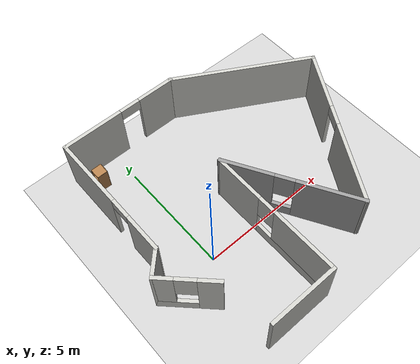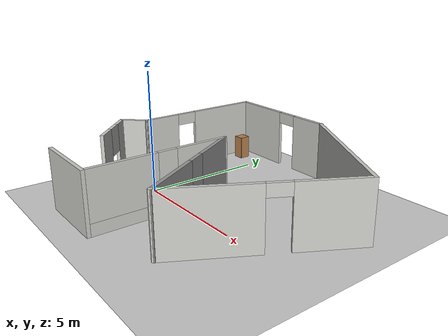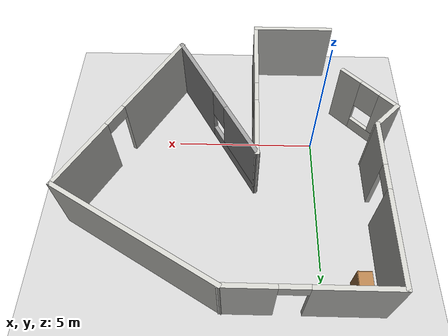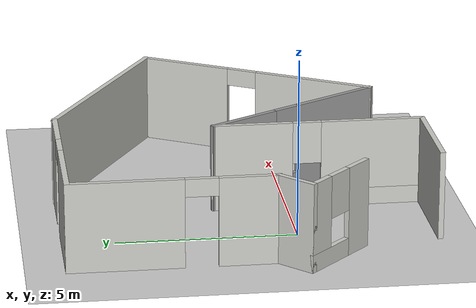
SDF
<sdf version="1.7">
 <world name="default">
  <light name="sun" type="directional">
   <pose>0 0 10 0 -0 0</pose>
   <diffuse>0.8 0.8 0.8 1</diffuse>
   <specular>0.2 0.2 0.2 1</specular>
   <attenuation>
    <range>1000</range>
    <constant>0.9</constant>
    <linear>0.01</linear>
    <quadratic>0.001</quadratic>
   </attenuation>
   <direction>-0.5 0.1 -0.9</direction>
   <spot><inner_angle>0</inner_angle><outer_angle>0</outer_angle><falloff>0</falloff></spot>
  </light>
  <model name="ground_plane">
   <static>1</static>
   <link name="link">
    <collision name="collision">
     <geometry><plane><normal>0 0 1</normal><size>100 100</size></plane></geometry>
     <surface>
      <contact><collide_bitmask>65535</collide_bitmask></contact>
      <friction><ode><mu>100</mu><mu2>50</mu2></ode></friction>
     </surface>
    </collision>
    <visual name="visual">
     <cast_shadows>0</cast_shadows>
     <geometry><plane><normal>0 0 1</normal><size>100 100</size></plane></geometry>
     <material>
      <script><uri>file://media/materials/scripts/gazebo.material</uri><name>Gazebo/Grey</name></script>
     </material>
    </visual>
   </link>
  </model>
  <gravity>0 0 -9.8</gravity>
  <magnetic_field>6e-06 2.3e-05 -4.2e-05</magnetic_field>
  <atmosphere type="adiabatic"/>
  <physics type="ode">
   <max_step_size>0.001</max_step_size>
   <real_time_factor>1</real_time_factor>
   <real_time_update_rate>1000</real_time_update_rate>
  </physics>
  <scene><ambient>0.4 0.4 0.4 1</ambient><background>0.7 0.7 0.7 1</background><shadows>1</shadows></scene>
  <audio><device>default</device></audio>
  <spherical_coordinates>
   <surface_model>EARTH_WGS84</surface_model>
   <latitude_deg>0</latitude_deg>
   <longitude_deg>0</longitude_deg>
   <elevation>0</elevation>
   <heading_deg>0</heading_deg>
  </spherical_coordinates>
  <model name="ors_building">
   <pose>2.92678 1.29373 0 0 -0 0</pose>
   <link name="Wall_0">
    <pose>-4.74763 -2.12288 0 0 -0 2.35619</pose>
    <visual name="Wall_0_Visual_0">
     <pose>-0.799423 0 1.25 0 -0 0</pose>
     <geometry><box><size>0.901154 0.15 2.5</size></box></geometry>
     <material>
      <script><uri>file://media/materials/scripts/gazebo.material</uri><name>Gazebo/CeilingTiled</name></script>
      <ambient>1 1 1 1</ambient>
     </material>
     <meta><layer>0</layer></meta>
    </visual>
    <collision name="Wall_0_Collision_0">
     <geometry><box><size>0.901154 0.15 2.5</size></box></geometry>
     <pose>-0.799423 0 1.25 0 -0 0</pose>
    </collision>
    <visual name="Wall_0_Visual_1">
     <pose>0.450577 0 0.25 0 -0 0</pose>
     <geometry><box><size>1.59885 0.15 0.5</size></box></geometry>
     <material>
      <script><uri>file://media/materials/scripts/gazebo.material</uri><name>Gazebo/CeilingTiled</name></script>
      <ambient>1 1 1 1</ambient>
     </material>
     <meta><layer>0</layer></meta>
    </visual>
    <collision name="Wall_0_Collision_1">
     <geometry><box><size>1.59885 0.15 0.5</size></box></geometry>
     <pose>0.450577 0 0.25 0 -0 0</pose>
    </collision>
    <visual name="Wall_0_Visual_2">
     <pose>0.850577 0 1.5 0 -0 0</pose>
     <geometry><box><size>0.798846 0.15 2</size></box></geometry>
     <material>
      <script><uri>file://media/materials/scripts/gazebo.material</uri><name>Gazebo/CeilingTiled</name></script>
      <ambient>1 1 1 1</ambient>
     </material>
     <meta><layer>0</layer></meta>
    </visual>
    <collision name="Wall_0_Collision_2">
     <geometry><box><size>0.798846 0.15 2</size></box></geometry>
     <pose>0.850577 0 1.5 0 -0 0</pose>
    </collision>
    <visual name="Wall_0_Visual_3">
     <pose>0.051154 0 1.9 0 -0 0</pose>
     <geometry><box><size>0.8 0.15 1.2</size></box></geometry>
     <material>
      <script><uri>file://media/materials/scripts/gazebo.material</uri><name>Gazebo/CeilingTiled</name></script>
      <ambient>1 1 1 1</ambient>
     </material>
     <meta><layer>0</layer></meta>
    </visual>
    <collision name="Wall_0_Collision_3">
     <geometry><box><size>0.8 0.15 1.2</size></box></geometry>
     <pose>0.051154 0 1.9 0 -0 0</pose>
    </collision>
   </link>
   <link name="Wall_1">
    <collision name="Wall_1_Collision">
     <geometry><box><size>1.25 0.15 2.5</size></box></geometry>
     <pose>0 0 1.25 0 -0 0</pose>
    </collision>
    <visual name="Wall_1_Visual">
     <pose>0 0 1.25 0 -0 0</pose>
     <geometry><box><size>1.25 0.15 2.5</size></box></geometry>
     <material>
      <script><uri>file://media/materials/scripts/gazebo.material</uri><name>Gazebo/CeilingTiled</name></script>
      <ambient>1 1 1 1</ambient>
     </material>
     <meta><layer>0</layer></meta>
    </visual>
    <pose>-5.18957 -0.903116 0 0 -0 0.785398</pose>
   </link>
   <link name="Wall_2">
    <pose>-4.80066 2.28579 0 0 -0 1.5708</pose>
    <visual name="Wall_2_Visual_0">
     <pose>-2.03282 0 1.25 0 -0 0</pose>
     <geometry><box><size>1.68436 0.15 2.5</size></box></geometry>
     <material>
      <script><uri>file://media/materials/scripts/gazebo.material</uri><name>Gazebo/CeilingTiled</name></script>
      <ambient>1 1 1 1</ambient>
     </material>
     <meta><layer>0</layer></meta>
    </visual>
    <collision name="Wall_2_Collision_0">
     <geometry><box><size>1.68436 0.15 2.5</size></box></geometry>
     <pose>-2.03282 0 1.25 0 -0 0</pose>
    </collision>
    <visual name="Wall_2_Visual_1">
     <pose>1.29218 0 1.25 0 -0 0</pose>
     <geometry><box><size>3.16564 0.15 2.5</size></box></geometry>
     <material>
      <script><uri>file://media/materials/scripts/gazebo.material</uri><name>Gazebo/CeilingTiled</name></script>
      <ambient>1 1 1 1</ambient>
     </material>
     <meta><layer>0</layer></meta>
    </visual>
    <collision name="Wall_2_Collision_1">
     <geometry><box><size>3.16564 0.15 2.5</size></box></geometry>
     <pose>1.29218 0 1.25 0 -0 0</pose>
    </collision>
    <visual name="Wall_2_Visual_2">
     <pose>-0.740638 0 2.25 0 -0 0</pose>
     <geometry><box><size>0.9 0.15 0.5</size></box></geometry>
     <material>
      <script><uri>file://media/materials/scripts/gazebo.material</uri><name>Gazebo/CeilingTiled</name></script>
      <ambient>1 1 1 1</ambient>
     </material>
     <meta><layer>0</layer></meta>
    </visual>
    <collision name="Wall_2_Collision_2">
     <geometry><box><size>0.9 0.15 0.5</size></box></geometry>
     <pose>-0.740638 0 2.25 0 -0 0</pose>
    </collision>
   </link>
   <link name="Wall_3">
    <pose>-2.25066 5.08579 0 0 -0 0</pose>
    <visual name="Wall_3_Visual_0">
     <pose>-1.29466 0 1.25 0 -0 0</pose>
     <geometry><box><size>2.66068 0.15 2.5</size></box></geometry>
     <material>
      <script><uri>file://media/materials/scripts/gazebo.material</uri><name>Gazebo/CeilingTiled</name></script>
      <ambient>1 1 1 1</ambient>
     </material>
     <meta><layer>0</layer></meta>
    </visual>
    <collision name="Wall_3_Collision_0">
     <geometry><box><size>2.66068 0.15 2.5</size></box></geometry>
     <pose>-1.29466 0 1.25 0 -0 0</pose>
    </collision>
    <visual name="Wall_3_Visual_1">
     <pose>1.78034 0 1.25 0 -0 0</pose>
     <geometry><box><size>1.68932 0.15 2.5</size></box></geometry>
     <material>
      <script><uri>file://media/materials/scripts/gazebo.material</uri><name>Gazebo/CeilingTiled</name></script>
      <ambient>1 1 1 1</ambient>
     </material>
     <meta><layer>0</layer></meta>
    </visual>
    <collision name="Wall_3_Collision_1">
     <geometry><box><size>1.68932 0.15 2.5</size></box></geometry>
     <pose>1.78034 0 1.25 0 -0 0</pose>
    </collision>
    <visual name="Wall_3_Visual_2">
     <pose>0.485677 0 2.25 0 -0 0</pose>
     <geometry><box><size>0.9 0.15 0.5</size></box></geometry>
     <material>
      <script><uri>file://media/materials/scripts/gazebo.material</uri><name>Gazebo/CeilingTiled</name></script>
      <ambient>1 1 1 1</ambient>
     </material>
     <meta><layer>0</layer></meta>
    </visual>
    <collision name="Wall_3_Collision_2">
     <geometry><box><size>0.9 0.15 0.5</size></box></geometry>
     <pose>0.485677 0 2.25 0 -0 0</pose>
    </collision>
   </link>
   <link name="Wall_4">
    <collision name="Wall_4_Collision">
     <geometry><box><size>6.25 0.15 2.5</size></box></geometry>
     <pose>0 0 1.25 0 -0 0</pose>
    </collision>
    <visual name="Wall_4_Visual">
     <pose>0 0 1.25 0 -0 0</pose>
     <geometry><box><size>6.25 0.15 2.5</size></box></geometry>
     <material>
      <script><uri>file://media/materials/scripts/gazebo.material</uri><name>Gazebo/CeilingTiled</name></script>
      <ambient>1 1 1 1</ambient>
     </material>
     <meta><layer>0</layer></meta>
    </visual>
    <pose>2.94072 3.56079 0 0 -0 -0.523599</pose>
   </link>
   <link name="Wall_5">
    <pose>3.80709 -1.0386 0 0 -0 -2.0944</pose>
    <visual name="Wall_5_Visual_0">
     <pose>-2.25054 0 1.25 0 -0 0</pose>
     <geometry><box><size>2.74892 0.15 2.5</size></box></geometry>
     <material>
      <script><uri>file://media/materials/scripts/gazebo.material</uri><name>Gazebo/CeilingTiled</name></script>
      <ambient>1 1 1 1</ambient>
     </material>
     <meta><layer>0</layer></meta>
    </visual>
    <collision name="Wall_5_Collision_0">
     <geometry><box><size>2.74892 0.15 2.5</size></box></geometry>
     <pose>-2.25054 0 1.25 0 -0 0</pose>
    </collision>
    <visual name="Wall_5_Visual_1">
     <pose>1.82446 0 1.25 0 -0 0</pose>
     <geometry><box><size>3.60108 0.15 2.5</size></box></geometry>
     <material>
      <script><uri>file://media/materials/scripts/gazebo.material</uri><name>Gazebo/CeilingTiled</name></script>
      <ambient>1 1 1 1</ambient>
     </material>
     <meta><layer>0</layer></meta>
    </visual>
    <collision name="Wall_5_Collision_1">
     <geometry><box><size>3.60108 0.15 2.5</size></box></geometry>
     <pose>1.82446 0 1.25 0 -0 0</pose>
    </collision>
    <visual name="Wall_5_Visual_2">
     <pose>-0.42608 0 2.25 0 -0 0</pose>
     <geometry><box><size>0.9 0.15 0.5</size></box></geometry>
     <material>
      <script><uri>file://media/materials/scripts/gazebo.material</uri><name>Gazebo/CeilingTiled</name></script>
      <ambient>1 1 1 1</ambient>
     </material>
     <meta><layer>0</layer></meta>
    </visual>
    <collision name="Wall_5_Collision_2">
     <geometry><box><size>0.9 0.15 0.5</size></box></geometry>
     <pose>-0.42608 0 2.25 0 -0 0</pose>
    </collision>
   </link>
   <link name="Wall_7">
    <pose>0.632093 -1.68812 0 0 -0 2.0944</pose>
    <visual name="Wall_7_Visual_0">
     <pose>-1.50613 0 1.25 0 -0 0</pose>
     <geometry><box><size>2.73775 0.15 2.5</size></box></geometry>
     <material>
      <script><uri>file://media/materials/scripts/gazebo.material</uri><name>Gazebo/Grey</name></script>
      <ambient>1 1 1 1</ambient>
     </material>
     <meta><layer>0</layer></meta>
    </visual>
    <collision name="Wall_7_Collision_0">
     <geometry><box><size>2.73775 0.15 2.5</size></box></geometry>
     <pose>-1.50613 0 1.25 0 -0 0</pose>
    </collision>
    <visual name="Wall_7_Visual_1">
     <pose>1.36887 0 0.25 0 -0 0</pose>
     <geometry><box><size>3.01225 0.15 0.5</size></box></geometry>
     <material>
      <script><uri>file://media/materials/scripts/gazebo.material</uri><name>Gazebo/Grey</name></script>
      <ambient>1 1 1 1</ambient>
     </material>
     <meta><layer>0</layer></meta>
    </visual>
    <collision name="Wall_7_Collision_1">
     <geometry><box><size>3.01225 0.15 0.5</size></box></geometry>
     <pose>1.36887 0 0.25 0 -0 0</pose>
    </collision>
    <visual name="Wall_7_Visual_2">
     <pose>1.76887 0 1.5 0 -0 0</pose>
     <geometry><box><size>2.21225 0.15 2</size></box></geometry>
     <material>
      <script><uri>file://media/materials/scripts/gazebo.material</uri><name>Gazebo/Grey</name></script>
      <ambient>1 1 1 1</ambient>
     </material>
     <meta><layer>0</layer></meta>
    </visual>
    <collision name="Wall_7_Collision_2">
     <geometry><box><size>2.21225 0.15 2</size></box></geometry>
     <pose>1.76887 0 1.5 0 -0 0</pose>
    </collision>
    <visual name="Wall_7_Visual_3">
     <pose>0.262748 0 1.9 0 -0 0</pose>
     <geometry><box><size>0.8 0.15 1.2</size></box></geometry>
     <material>
      <script><uri>file://media/materials/scripts/gazebo.material</uri><name>Gazebo/Grey</name></script>
      <ambient>1 1 1 1</ambient>
     </material>
     <meta><layer>0</layer></meta>
    </visual>
    <collision name="Wall_7_Collision_3">
     <geometry><box><size>0.8 0.15 1.2</size></box></geometry>
     <pose>0.262748 0 1.9 0 -0 0</pose>
    </collision>
   </link>
   <link name="Wall_8">
    <pose>-0.767907 -2.18825 0 0 -0 -1.5708</pose>
    <visual name="Wall_8_Visual_0">
     <pose>-1.86453 0 1.25 0 -0 0</pose>
     <geometry><box><size>2.27095 0.15 2.5</size></box></geometry>
     <material>
      <script><uri>file://media/materials/scripts/gazebo.material</uri><name>Gazebo/CeilingTiled</name></script>
      <ambient>1 1 1 1</ambient>
     </material>
     <meta><layer>0</layer></meta>
    </visual>
    <collision name="Wall_8_Collision_0">
     <geometry><box><size>2.27095 0.15 2.5</size></box></geometry>
     <pose>-1.86453 0 1.25 0 -0 0</pose>
    </collision>
    <visual name="Wall_8_Visual_1">
     <pose>1.13547 0 0.25 0 -0 0</pose>
     <geometry><box><size>3.72905 0.15 0.5</size></box></geometry>
     <material>
      <script><uri>file://media/materials/scripts/gazebo.material</uri><name>Gazebo/CeilingTiled</name></script>
      <ambient>1 1 1 1</ambient>
     </material>
     <meta><layer>0</layer></meta>
    </visual>
    <collision name="Wall_8_Collision_1">
     <geometry><box><size>3.72905 0.15 0.5</size></box></geometry>
     <pose>1.13547 0 0.25 0 -0 0</pose>
    </collision>
    <visual name="Wall_8_Visual_2">
     <pose>1.53547 0 1.5 0 -0 0</pose>
     <geometry><box><size>2.92905 0.15 2</size></box></geometry>
     <material>
      <script><uri>file://media/materials/scripts/gazebo.material</uri><name>Gazebo/CeilingTiled</name></script>
      <ambient>1 1 1 1</ambient>
     </material>
     <meta><layer>0</layer></meta>
    </visual>
    <collision name="Wall_8_Collision_2">
     <geometry><box><size>2.92905 0.15 2</size></box></geometry>
     <pose>1.53547 0 1.5 0 -0 0</pose>
    </collision>
    <visual name="Wall_8_Visual_3">
     <pose>-0.329052 0 1.9 0 -0 0</pose>
     <geometry><box><size>0.8 0.15 1.2</size></box></geometry>
     <material>
      <script><uri>file://media/materials/scripts/gazebo.material</uri><name>Gazebo/CeilingTiled</name></script>
      <ambient>1 1 1 1</ambient>
     </material>
     <meta><layer>0</layer></meta>
    </visual>
    <collision name="Wall_8_Collision_3">
     <geometry><box><size>0.8 0.15 1.2</size></box></geometry>
     <pose>-0.329052 0 1.9 0 -0 0</pose>
    </collision>
   </link>
   <link name="Wall_9">
    <collision name="Wall_9_Collision">
     <geometry><box><size>3 0.15 2.5</size></box></geometry>
     <pose>0 0 1.25 0 -0 0</pose>
    </collision>
    <visual name="Wall_9_Visual">
     <pose>0 0 1.25 0 -0 0</pose>
     <geometry><box><size>3 0.15 2.5</size></box></geometry>
     <material>
      <script><uri>file://media/materials/scripts/gazebo.material</uri><name>Gazebo/CeilingTiled</name></script>
      <ambient>1 1 1 1</ambient>
     </material>
     <meta><layer>0</layer></meta>
    </visual>
    <pose>-2.19291 -5.11325 0 0 -0 3.14159</pose>
   </link>
   <static>1</static>
  </model>
  <model name="cabinet">
   <static>1</static>
   <link name="cabinet_bottom_plate">
    <inertial>
     <pose>0 0 -1 0 -0 0</pose>
     <inertia><ixx>2.05</ixx><ixy>0</ixy><ixz>0</ixz><iyy>2.05</iyy><iyz>0</iyz><izz>2.05</izz></inertia>
     <mass>25</mass>
    </inertial>
    <collision name="cabinet_bottom_plate_geom">
     <pose>0 0 0.01 0 -0 0</pose>
     <geometry><box><size>0.45 0.45 0.02</size></box></geometry>
    </collision>
    <visual name="cabinet_bottom_plate_geom_visual">
     <pose>0 0 0.01 0 -0 0</pose>
     <geometry><box><size>0.45 0.45 0.02</size></box></geometry>
     <material>
      <script><uri>file://media/materials/scripts/gazebo.material</uri><name>Gazebo/Wood</name></script>
     </material>
    </visual>
    <collision name="cabinet_bottom_plate_geom_cabinet_back_plate">
     <pose>0.235 0 0.51 0 -0 0</pose>
     <geometry><box><size>0.02 0.45 1.02</size></box></geometry>
    </collision>
    <visual name="cabinet_bottom_plate_geom_cabinet_back_plate_visual">
     <pose>0.235 0 0.51 0 -0 0</pose>
     <geometry><box><size>0.02 0.45 1.02</size></box></geometry>
     <material>
      <script><uri>file://media/materials/scripts/gazebo.material</uri><name>Gazebo/Wood</name></script>
     </material>
    </visual>
    <collision name="cabinet_bottom_plate_geom_cabinet_left_plate">
     <pose>0 0.235 0.51 0 -0 0</pose>
     <geometry><box><size>0.45 0.02 1.02</size></box></geometry>
    </collision>
    <visual name="cabinet_bottom_plate_geom_cabinet_left_plate_visual">
     <pose>0 0.235 0.51 0 -0 0</pose>
     <geometry><box><size>0.45 0.02 1.02</size></box></geometry>
     <material>
      <script><uri>file://media/materials/scripts/gazebo.material</uri><name>Gazebo/Wood</name></script>
     </material>
    </visual>
    <collision name="cabinet_bottom_plate_geom_cabinet_middle_plate">
     <pose>0 0 0.51 0 -0 0</pose>
     <geometry><box><size>0.45 0.45 0.02</size></box></geometry>
    </collision>
    <visual name="cabinet_bottom_plate_geom_cabinet_middle_plate_visual">
     <pose>0 0 0.51 0 -0 0</pose>
     <geometry><box><size>0.45 0.45 0.02</size></box></geometry>
     <material>
      <script><uri>file://media/materials/scripts/gazebo.material</uri><name>Gazebo/Wood</name></script>
     </material>
    </visual>
    <collision name="cabinet_bottom_plate_geom_cabinet_right_plate">
     <pose>0 -0.235 0.51 0 -0 0</pose>
     <geometry><box><size>0.45 0.02 1.02</size></box></geometry>
    </collision>
    <visual name="cabinet_bottom_plate_geom_cabinet_right_plate_visual">
     <pose>0 -0.235 0.51 0 -0 0</pose>
     <geometry><box><size>0.45 0.02 1.02</size></box></geometry>
     <material>
      <script><uri>file://media/materials/scripts/gazebo.material</uri><name>Gazebo/Wood</name></script>
     </material>
    </visual>
    <collision name="cabinet_bottom_plate_geom_cabinet_top_plate">
     <pose>0 0 1.01 0 -0 0</pose>
     <geometry><box><size>0.45 0.45 0.02</size></box></geometry>
    </collision>
    <visual name="cabinet_bottom_plate_geom_cabinet_top_plate_visual">
     <pose>0 0 1.01 0 -0 0</pose>
     <geometry><box><size>0.45 0.45 0.02</size></box></geometry>
     <material>
      <script><uri>file://media/materials/scripts/gazebo.material</uri><name>Gazebo/Wood</name></script>
     </material>
    </visual>
   </link>
   <pose>-1.18067 5.58558 0 0 -0 0</pose>
  </model>
 </world>
</sdf>
